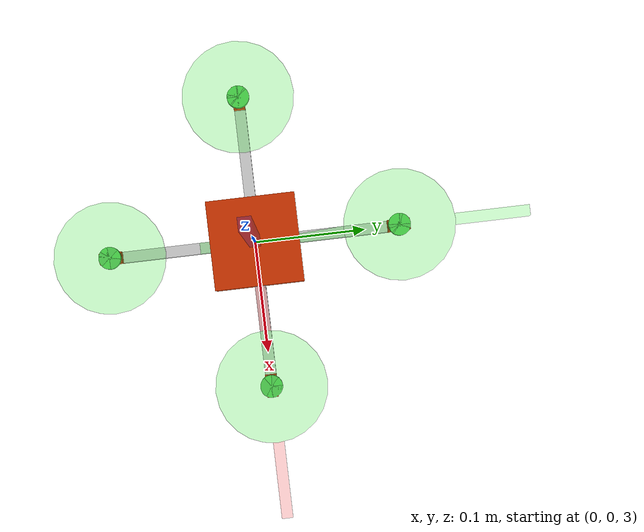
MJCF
<mujoco model="quadrotor_u1234">
    <compiler angle="degree" inertiafromgeom="true" coordinate="local"/>
    <option timestep="0.01" gravity="0 0 -9.81" density="1" viscosity="1e-5" integrator="RK4"/>

    <default>
        <joint armature="1" damping="1" limited="true"/>
        <geom conaffinity="0" condim="3" density="5.0" friction="1 0.5 0.5" margin="0.01" rgba="0.8 0.6 0.4 1"/>
    </default>

    <asset>
        <texture builtin="gradient" type="skybox" height="100" width="100" rgb1="1 1 1" rgb2="0 0 0"/>
        <texture name="texgeom" builtin="flat" height="1278" mark="cross" markrgb="1 1 1" random="0.01" rgb1="0.8 0.6 0.4" rgb2="0.8 0.6 0.4" type="cube" width="127"/>
        <texture name="texplane" builtin="checker" height="100" width="100" rgb1="0 0 0" rgb2="0.8 0.8 0.8" type="2d"/>
        <material name="MatPlane" reflectance="0.5" shininess="1" specular="1" texrepeat="60 60" texture="texplane"/>
        <material name="geom" texture="texgeom" texuniform="true"/>
    </asset>

    <worldbody>
        <light cutoff="100" diffuse="1 1 1" dir="-0 0 -1.3" directional="true" exponent="1" pos="0 0 1.3" specular=".1 .1 .1"/>
        <geom conaffinity="1" condim="3" material="MatPlane" name="floor" pos="0 0 0" rgba="0.4 0.3 0.3 1" size="5 5 0.2" type="plane"/>

        <body name="core" pos="0 0 3">
            <geom name="core_geom" type="box" pos="0 0 0" quat="1 0 0 0" size=".04 .04 .02" rgba=".8 .2 0 1" mass=".1"/>
            <joint name="root" type="free" damping="0" armature="0" pos="0 0 0" limited="false"/>

            <!-- Site en el centro del cuerpo para aplicar wrench (u1,u2,u3,u4) -->
            <site name="com_site" pos="0 0 0" size="0.005" rgba="1 0 0 1"/>

            <!-- brazos (solo visual/masa, sin actuadores por motor) -->
            <geom name="arm_front0" type="box" pos=".08 0 0" size=".04 .005 .005" quat="1 0 0 0" rgba=".8 .8 .8 1" mass=".02"/>
            <geom name="arm_back0"  type="box" pos="-.08 0 0" size=".04 .005 .005" quat="0 0 0 1" rgba=".8 .8 .8 1" mass=".02"/>
            <geom name="arm_left0"  type="box" pos="0 .08 0" size=".04 .005 .005" quat=".707 0 0 .707" rgba=".8 .8 .8 1" mass=".02"/>
            <geom name="arm_right0" type="box" pos="0 -.08 0" size=".04 .005 .005" quat=".707 0 0 -.707" rgba=".8 .8 .8 1" mass=".02"/>

            <!-- (Opcional) mantener thrusters/sites solo para visualizar -->
            <body name="arm_front1" pos=".12 0 0">
                <geom type="box" pos=".01 0 .005" size=".01 .005 .01" quat="1 0 0 0" rgba="1 .1 0 1" mass=".02"/>
                <body name="thruster0" pos="0.01 0 0.015">
                    <geom type="cylinder" pos="0 0 .0025" size=".05 .0025" quat="1 0 0 0" rgba=".3 1 .3 0.3" mass=".005"/>
                    <site name="motor0" type="cylinder" pos="0 0 .0025" size=".01 .0025" quat="1 0 0 0" rgba=".3 .8 .3 1"/>
                </body>
            </body>

            <body name="arm_back1" pos="-.12 0 0">
                <geom type="box" pos="-.01 0 .005" size=".01 .005 .01" quat="0 0 0 1" rgba="1 .1 0 1" mass=".02"/>
                <body name="thruster1" pos="-0.01 0 .015">
                    <geom type="cylinder" pos="0 0 .0025" size=".05 .0025" quat="1 0 0 0" rgba=".3 1 .3 0.3" mass=".005"/>
                    <site name="motor1" type="cylinder" pos="0 0 .0025" size=".01 .0025" quat="1 0 0 0" rgba=".3 .8 .3 1"/>
                </body>
            </body>

            <body name="arm_left1" pos="0 .12 0">
                <geom type="box" pos="0 .01 .005" size=".01 .005 .01" quat=".7071068 0 0 .7071068" rgba="1 .1 0 1" mass=".02"/>
                <body name="thruster2" pos="0 0.01 0.015">
                    <geom type="cylinder" pos="0 0 .0025" size=".05 .0025" quat="1 0 0 0" rgba=".3 1 .3 0.3" mass=".005"/>
                    <site name="motor2" type="cylinder" pos="0 0 .0025" size=".01 0.0025" quat="1 0 0 0" rgba=".3 .8 .3 1"/>
                </body>
            </body>

            <body name="arm_right1" pos="0 -.12 0">
                <geom type="box" pos="0 -.01 .005" size=".01 .005 .01" quat=".7071068 0 0 -.7071068" rgba="1 .1 0 1" mass=".02"/>
                <body name="thruster3" pos="0 -0.01 0.015">
                    <geom type="cylinder" pos="0 0 .0025" size=".05 .0025" quat="1 0 0 0" rgba=".3 1 .3 0.3" mass=".005"/>
                    <site name="motor3" type="cylinder" pos="0 0 .0025" size=".01 .0025" quat="1 0 0 0" rgba=".3 .8 .3 1"/>
                </body>
            </body>

            <site name="x_axis" type="box" pos=".1 .0 .0" size=".15 .005 .005" quat="1 0 0 0" rgba="1 0 0 0.2"/>
            <site name="y_axis" type="box" pos=".0 .1 .0" size=".15 .005 .005" quat=".707 0 0 .707" rgba="0 1 0 0.2"/>
            <site name="z_axis" type="box" pos=".0 .0 .1" size=".15 .005 .005" quat="-.707 0 .707 0" rgba="0 0 1 0.2"/>
        </body>
    </worldbody>

    <actuator>
        <!-- u1: thrust total a lo largo de +z del cuerpo (en com_site) -->
        <general name="u1_thrust" site="com_site"
                 ctrllimited="true" ctrlrange="0 10"
                 gear="0 0 1  0 0 0"/>

        <!-- u2,u3,u4: torques en el frame del cuerpo -->
        <general name="u2_tau_x" site="com_site"
                 ctrllimited="true" ctrlrange="-1 1"
                 gear="0 0 0  1 0 0"/>

        <general name="u3_tau_y" site="com_site"
                 ctrllimited="true" ctrlrange="-1 1"
                 gear="0 0 0  0 1 0"/>

        <general name="u4_tau_z" site="com_site"
                 ctrllimited="true" ctrlrange="-0.2 0.2"
                 gear="0 0 0  0 0 1"/>
    </actuator>
</mujoco>
